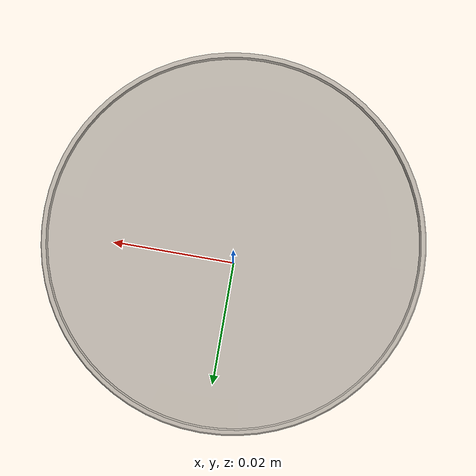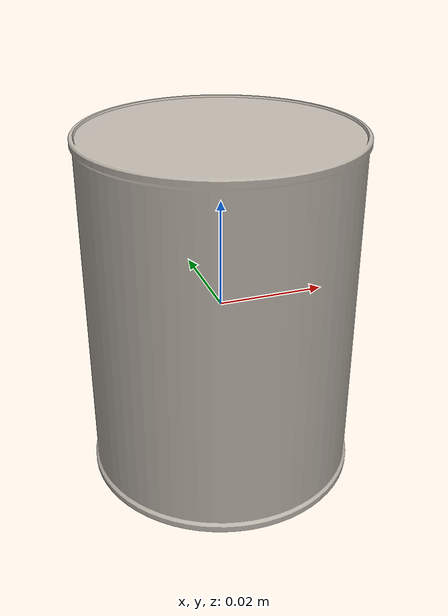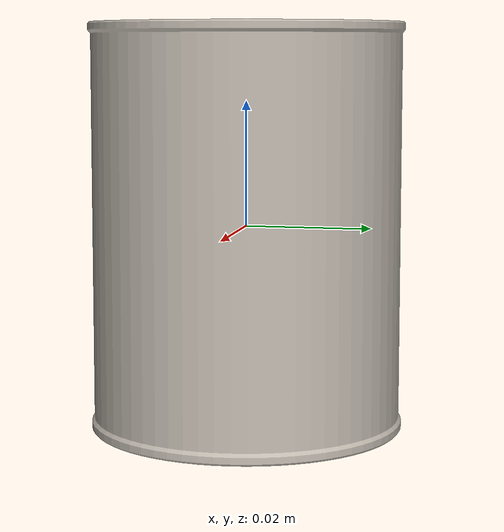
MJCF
<mujoco model="robocasa-canned-food-18">
  <asset>
    <mesh file="meshes/robocasa_selected/canned_food_18/model_normalized_0.obj"
          name="food_can_mesh" scale="0.05320355 0.05320355 0.065" refquat="1 0 0 0"/>
    <texture file="meshes/robocasa_selected/canned_food_18/image0.png" name="food_can_texture" type="2d"/>
    <material name="food_can_material" texture="food_can_texture" specular="0.5" shininess="0.25"/>
  </asset>
  <worldbody>
    <body>
      <body name="object">
        <geom name="food_can_collision" type="cylinder" size="0.025 0.0325" group="0" rgba="0 0 0 0"/>
        <geom name="food_can_visual" type="mesh" mesh="food_can_mesh" material="food_can_material"
              contype="0" conaffinity="0" group="1" mass="0.0001"/>
      </body>
      <site rgba="0 0 0 0" size="0.005" pos="0 0 -0.0325" name="bottom_site"/>
      <site rgba="0 0 0 0" size="0.005" pos="0 0 0.0325" name="top_site"/>
      <site rgba="0 0 0 0" size="0.005" pos="0.025 0.025 0" name="horizontal_radius_site"/>
    </body>
  </worldbody>
</mujoco>
